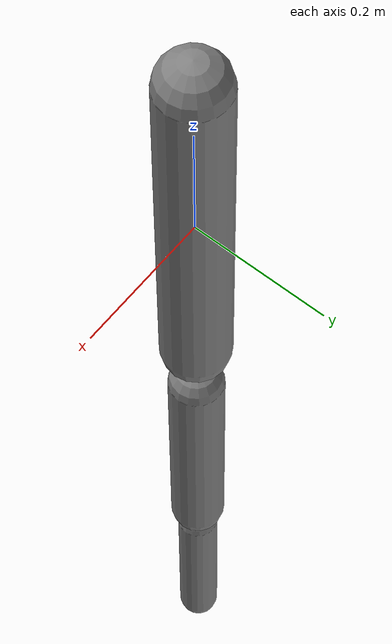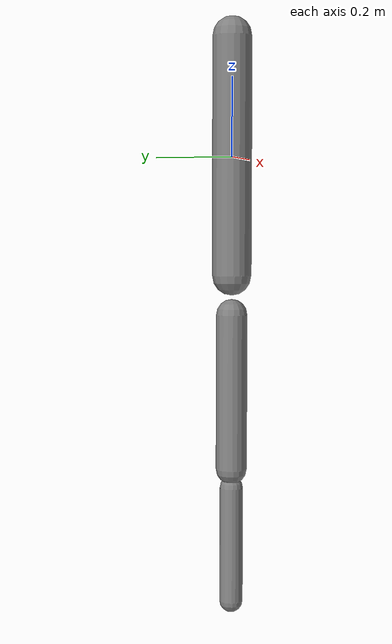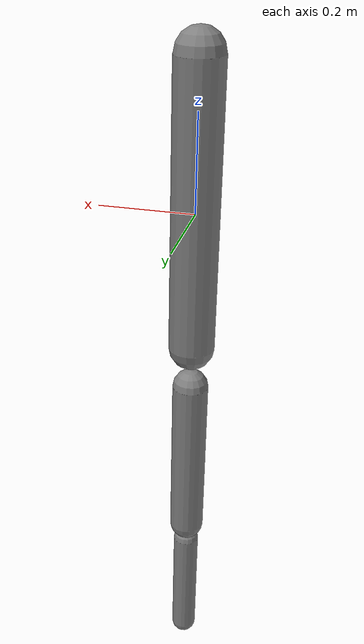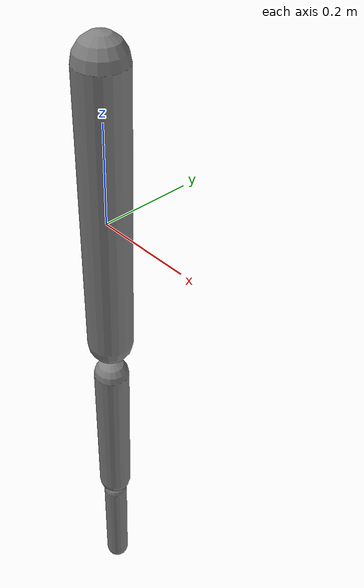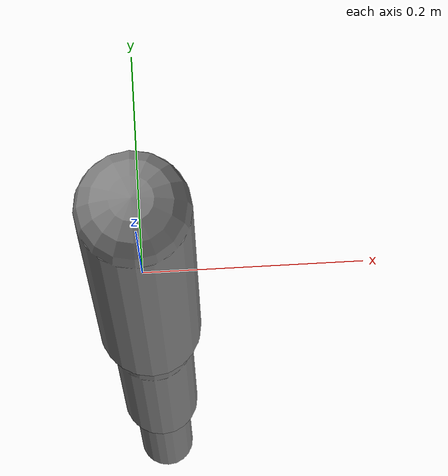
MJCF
<mujoco>
      <option gravity="0 0 -9.81"/>
      <worldbody>
        <body pos="0 0 0">
          <joint name="j1" type="hinge" axis="0 1 0"/>
          <geom type="capsule" size="0.05 0.3" mass="1.0"/>
          <body pos="0 0 -0.6">
            <joint name="j2" type="hinge" axis="0 1 0"/>
            <geom type="capsule" size="0.04 0.2" mass="0.5"/>
            <body pos="0 0 -0.4">
              <joint name="j3" type="hinge" axis="1 0 0"/>
              <geom type="capsule" size="0.03 0.15" mass="0.3"/>
            </body>
          </body>
        </body>
      </worldbody>
      <actuator>
        <motor joint="j1" gear="1"/>
        <motor joint="j2" gear="1"/>
        <motor joint="j3" gear="1"/>
      </actuator>
    </mujoco>
